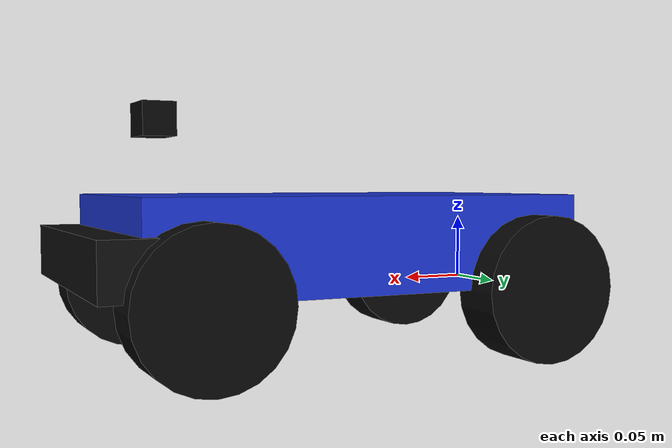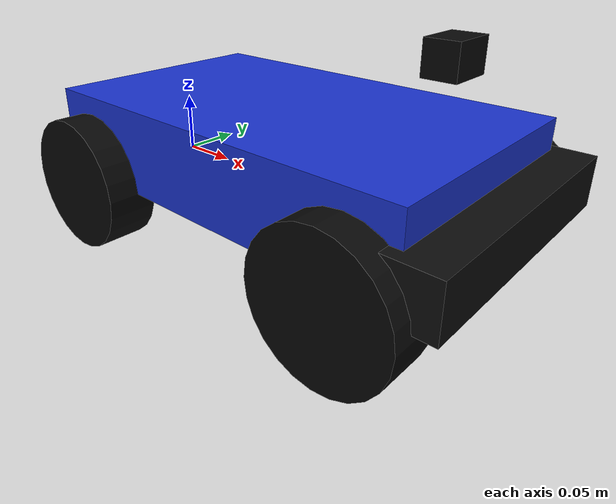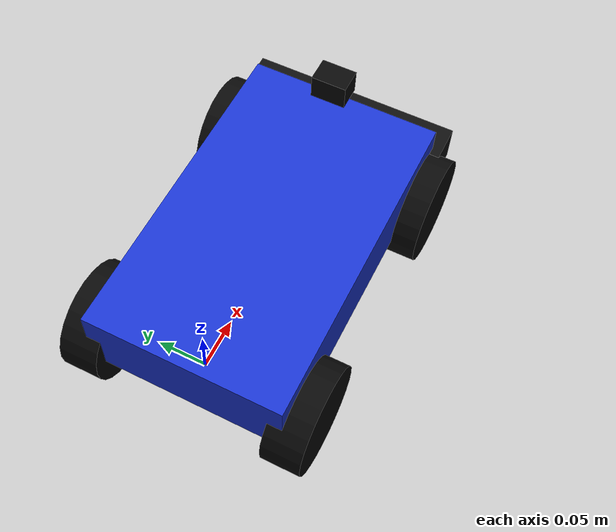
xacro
<?xml version="1.0"?>

<robot
  name="iot_car_v2"
  xmlns:xacro="http://www.ros.org/wiki/xacro">
  <xacro:include filename="camera_v2.xacro"/>
  <xacro:include filename="sensors_v2.xacro"/>

  <!-- Fahrzeugabmessungen -->
  <xacro:property name="wheelbase" value="0.26"/>
  <xacro:property name="track_width" value="0.21"/>
  <xacro:property name="wheel_radius" value="0.055"/>
  <xacro:property name="wheel_width" value="0.040"/>

  <xacro:property name="chassis_length" value="0.34"/>
  <xacro:property name="chassis_width" value="0.20"/>
  <xacro:property name="chassis_height" value="0.07"/>

  <xacro:property name="chassis_center_x" value="0.13"/>
  <xacro:property name="chassis_center_z" value="0.035"/>

  <xacro:property name="left_y" value="${track_width / 2.0}"/>
  <xacro:property name="right_y" value="${-track_width / 2.0}"/>

  <!-- Materialien -->
  <material name="BodyBlue">
    <color rgba="0.10 0.20 0.80 1.0"/>
  </material>

  <material name="WheelBlack">
    <color rgba="0.03 0.03 0.03 1.0"/>
  </material>

  <!-- Fahrzeugkörper -->
  <link name="base_link">

    <visual>
      <origin xyz="${chassis_center_x} 0 ${chassis_center_z}"/>

      <geometry>
        <box size="${chassis_length} ${chassis_width} ${chassis_height}"/>
      </geometry>

      <material name="BodyBlue"/>
    </visual>

    <collision>
      <origin xyz="${chassis_center_x} 0 ${chassis_center_z}"/>

      <geometry>
        <box size="${chassis_length} ${chassis_width} ${chassis_height}"/>
      </geometry>
    </collision>

    <inertial>
      <origin xyz="${chassis_center_x} 0 ${chassis_center_z}"/>

      <mass value="3.0"/>

      <inertia
        ixx="0.01123"
        ixy="0.0"
        ixz="0.0"
        iyy="0.03013"
        iyz="0.0"
        izz="0.03890"/>
    </inertial>

  </link>

  <!-- Hinterräder -->
  <link name="rear_left_wheel">

    <visual>
      <geometry>
        <cylinder
          radius="${wheel_radius}"
          length="${wheel_width}"/>
      </geometry>

      <material name="WheelBlack"/>
    </visual>

    <collision>
      <geometry>
        <cylinder
          radius="${wheel_radius}"
          length="${wheel_width}"/>
      </geometry>
    </collision>

    <inertial>
      <mass value="0.18"/>

      <inertia
        ixx="0.000160"
        ixy="0.0"
        ixz="0.0"
        iyy="0.000160"
        iyz="0.0"
        izz="0.000272"/>
    </inertial>

  </link>

  <joint
    name="rear_left_wheel_joint"
    type="continuous">

    <parent link="base_link"/>
    <child link="rear_left_wheel"/>

    <origin
      xyz="0 ${left_y} 0"
      rpy="-1.57079632679 0 0"/>

    <axis xyz="0 0 1"/>

    <dynamics damping="0.001"/>

  </joint>

  <link name="rear_right_wheel">

    <visual>
      <geometry>
        <cylinder
          radius="${wheel_radius}"
          length="${wheel_width}"/>
      </geometry>

      <material name="WheelBlack"/>
    </visual>

    <collision>
      <geometry>
        <cylinder
          radius="${wheel_radius}"
          length="${wheel_width}"/>
      </geometry>
    </collision>

    <inertial>
      <mass value="0.18"/>

      <inertia
        ixx="0.000160"
        ixy="0.0"
        ixz="0.0"
        iyy="0.000160"
        iyz="0.0"
        izz="0.000272"/>
    </inertial>

  </link>

  <joint
    name="rear_right_wheel_joint"
    type="continuous">

    <parent link="base_link"/>
    <child link="rear_right_wheel"/>

    <origin
      xyz="0 ${right_y} 0"
      rpy="-1.57079632679 0 0"/>

    <axis xyz="0 0 1"/>

    <dynamics damping="0.001"/>

  </joint>

  <!-- Vorderachslenkung -->
  <link name="left_wheel_steering">

    <inertial>
      <mass value="0.05"/>

      <inertia
        ixx="0.0001"
        ixy="0.0"
        ixz="0.0"
        iyy="0.0001"
        iyz="0.0"
        izz="0.0001"/>
    </inertial>

  </link>

  <joint
    name="left_wheel_steering_joint"
    type="revolute">

    <parent link="base_link"/>
    <child link="left_wheel_steering"/>

    <origin
      xyz="${wheelbase} ${left_y} 0"
      rpy="0 0 0"/>

    <axis xyz="0 0 1"/>

    <limit
      lower="-0.55"
      upper="0.55"
      effort="20.0"
      velocity="8.0"/>

    <dynamics damping="0.10"/>

  </joint>

  <link name="right_wheel_steering">

    <inertial>
      <mass value="0.05"/>

      <inertia
        ixx="0.0001"
        ixy="0.0"
        ixz="0.0"
        iyy="0.0001"
        iyz="0.0"
        izz="0.0001"/>
    </inertial>

  </link>

  <joint
    name="right_wheel_steering_joint"
    type="revolute">

    <parent link="base_link"/>
    <child link="right_wheel_steering"/>

    <origin
      xyz="${wheelbase} ${right_y} 0"
      rpy="0 0 0"/>

    <axis xyz="0 0 1"/>

    <limit
      lower="-0.55"
      upper="0.55"
      effort="20.0"
      velocity="8.0"/>

    <dynamics damping="0.10"/>

  </joint>

  <!-- Vorderräder -->
  <link name="front_left_wheel">

    <visual>
      <geometry>
        <cylinder
          radius="${wheel_radius}"
          length="${wheel_width}"/>
      </geometry>

      <material name="WheelBlack"/>
    </visual>

    <collision>
      <geometry>
        <cylinder
          radius="${wheel_radius}"
          length="${wheel_width}"/>
      </geometry>
    </collision>

    <inertial>
      <mass value="0.18"/>

      <inertia
        ixx="0.000160"
        ixy="0.0"
        ixz="0.0"
        iyy="0.000160"
        iyz="0.0"
        izz="0.000272"/>
    </inertial>

  </link>

  <joint
    name="front_left_wheel_joint"
    type="continuous">

    <parent link="left_wheel_steering"/>
    <child link="front_left_wheel"/>

    <origin
      xyz="0 0 0"
      rpy="-1.57079632679 0 0"/>

    <axis xyz="0 0 1"/>

    <dynamics damping="0.001"/>

  </joint>

  <link name="front_right_wheel">

    <visual>
      <geometry>
        <cylinder
          radius="${wheel_radius}"
          length="${wheel_width}"/>
      </geometry>

      <material name="WheelBlack"/>
    </visual>

    <collision>
      <geometry>
        <cylinder
          radius="${wheel_radius}"
          length="${wheel_width}"/>
      </geometry>
    </collision>

    <inertial>
      <mass value="0.18"/>

      <inertia
        ixx="0.000160"
        ixy="0.0"
        ixz="0.0"
        iyy="0.000160"
        iyz="0.0"
        izz="0.000272"/>
    </inertial>

  </link>

  <joint
    name="front_right_wheel_joint"
    type="continuous">

    <parent link="right_wheel_steering"/>
    <child link="front_right_wheel"/>

    <origin
      xyz="0 0 0"
      rpy="-1.57079632679 0 0"/>

    <axis xyz="0 0 1"/>

    <dynamics damping="0.001"/>

  </joint>

  <!-- ROS 2 Control -->
  <ros2_control
    name="GazeboSystem"
    type="system">

    <hardware>
      <plugin>gz_ros2_control/GazeboSimSystem</plugin>
    </hardware>

    <joint name="rear_left_wheel_joint">
      <command_interface name="velocity"/>
      <state_interface name="velocity"/>
      <state_interface name="position"/>
    </joint>

    <joint name="rear_right_wheel_joint">
      <command_interface name="velocity"/>
      <state_interface name="velocity"/>
      <state_interface name="position"/>
    </joint>

    <joint name="left_wheel_steering_joint">
      <command_interface name="position"/>
      <state_interface name="position"/>
    </joint>

    <joint name="right_wheel_steering_joint">
      <command_interface name="position"/>
      <state_interface name="position"/>
    </joint>

    <joint name="front_left_wheel_joint">
      <state_interface name="position"/>
      <state_interface name="velocity"/>
    </joint>

    <joint name="front_right_wheel_joint">
      <state_interface name="position"/>
      <state_interface name="velocity"/>
    </joint>

  </ros2_control>

  <!-- Gazebo-Anbindung -->
  <gazebo>

    <plugin
      filename="gz_ros2_control-system"
      name="gz_ros2_control::GazeboSimROS2ControlPlugin">

      <parameters>
        $(find iot_car_description)/config/vehicle_v2_controllers.yaml
      </parameters>

    </plugin>

  </gazebo>

</robot>

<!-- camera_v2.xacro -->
<robot xmlns:xacro="http://www.ros.org/wiki/xacro">

  <!-- Frontkamera -->
  <link name="camera_link">

    <visual>
      <geometry>
        <box size="0.025 0.035 0.025"/>
      </geometry>

      <material name="CameraBlack">
        <color rgba="0.03 0.03 0.03 1.0"/>
      </material>
    </visual>

    <collision>
      <geometry>
        <box size="0.025 0.035 0.025"/>
      </geometry>
    </collision>

    <inertial>
      <mass value="0.03"/>

      <inertia
        ixx="0.00001"
        ixy="0.0"
        ixz="0.0"
        iyy="0.00001"
        iyz="0.0"
        izz="0.00001"/>
    </inertial>

  </link>

  <joint name="camera_joint" type="fixed">

    <parent link="base_link"/>
    <child link="camera_link"/>

    <origin
      xyz="0.265 0 0.125"
      rpy="0 0 0"/>

  </joint>

  <!-- Gazebo-Kamera -->
  <gazebo reference="camera_link">

    <sensor name="front_camera" type="camera">

      <always_on>true</always_on>
      <update_rate>30</update_rate>

      <topic>/car/camera/image</topic>

      <camera>

        <horizontal_fov>1.3962634</horizontal_fov>

        <image>
          <width>640</width>
          <height>360</height>
          <format>R8G8B8</format>
        </image>

        <clip>
          <near>0.03</near>
          <far>100.0</far>
        </clip>

        <camera_info_topic>
          /car/camera/camera_info
        </camera_info_topic>

      </camera>

    </sensor>

  </gazebo>

</robot>

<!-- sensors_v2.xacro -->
<robot xmlns:xacro="http://www.ros.org/wiki/xacro">

  <!-- Frontbumper -->
  <link name="front_bumper_link">

    <visual>
      <geometry>
        <box size="0.04 0.22 0.04"/>
      </geometry>

      <material name="BumperBlack">
        <color rgba="0.05 0.05 0.05 1.0"/>
      </material>
    </visual>

    <collision>
      <geometry>
        <box size="0.04 0.22 0.04"/>
      </geometry>
    </collision>

    <inertial>
      <mass value="0.08"/>

      <inertia
        ixx="0.00035"
        ixy="0.0"
        ixz="0.0"
        iyy="0.00002"
        iyz="0.0"
        izz="0.00036"/>
    </inertial>

  </link>

  <joint name="front_bumper_joint" type="fixed">

    <parent link="base_link"/>
    <child link="front_bumper_link"/>

    <origin
      xyz="0.31 0 0.025"
      rpy="0 0 0"/>

  </joint>

  <!-- Front-Abstandssensor -->
  <link name="front_sensor_link">

    <visual>
      <geometry>
        <box size="0.018 0.028 0.018"/>
      </geometry>

      <material name="SensorBlack">
        <color rgba="0.04 0.04 0.04 1.0"/>
      </material>
    </visual>

    <inertial>
      <mass value="0.02"/>

      <inertia
        ixx="0.000005"
        ixy="0.0"
        ixz="0.0"
        iyy="0.000005"
        iyz="0.0"
        izz="0.000005"/>
    </inertial>

  </link>

  <joint name="front_sensor_joint" type="fixed">

    <parent link="base_link"/>
    <child link="front_sensor_link"/>

    <origin
      xyz="0.285 0 0.055"
      rpy="0 0 0"/>

  </joint>

  <!-- Abstandsmessung -->
  <gazebo reference="front_sensor_link">

    <sensor name="front_distance_sensor" type="gpu_lidar">

      <always_on>true</always_on>
      <update_rate>20</update_rate>

      <topic>/car/front_scan</topic>

      <lidar>

        <scan>
          <horizontal>
            <samples>9</samples>
            <resolution>1</resolution>
            <min_angle>-0.12</min_angle>
            <max_angle>0.12</max_angle>
          </horizontal>
        </scan>

        <range>
          <min>0.03</min>
          <max>4.0</max>
          <resolution>0.005</resolution>
        </range>

      </lidar>

      <visualize>false</visualize>

    </sensor>

  </gazebo>

</robot>
